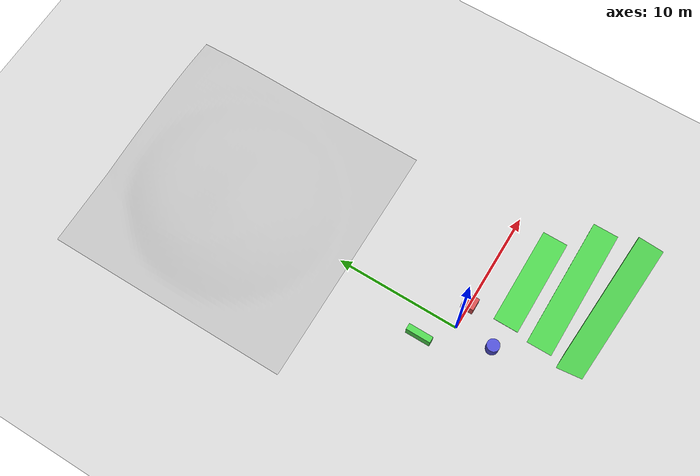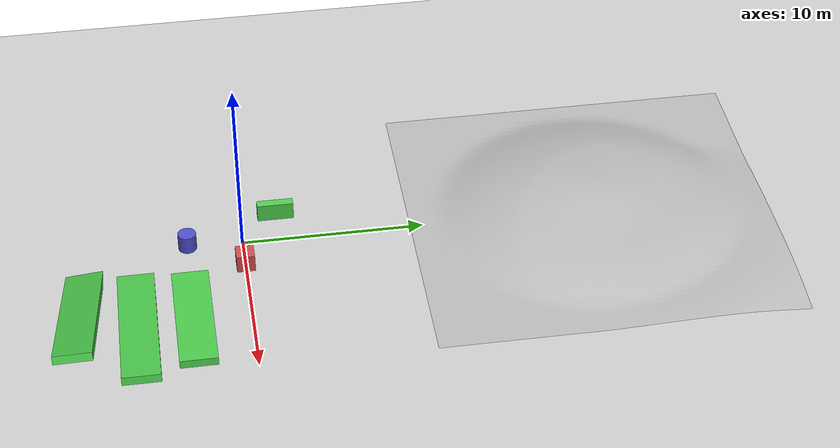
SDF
<sdf version="1.7">
 <world name="test_world">
  <physics type="ode">
   <max_step_size>0.001</max_step_size>
   <real_time_factor>1</real_time_factor>
   <real_time_update_rate>1000</real_time_update_rate>
  </physics>
  <light name="sun" type="directional">
   <pose>0 0 10 0 -0 0</pose>
   <diffuse>0.8 0.8 0.8 1</diffuse>
   <specular>0.2 0.2 0.2 1</specular>
   <attenuation>
    <range>1000</range>
    <constant>0.9</constant>
    <linear>0.01</linear>
    <quadratic>0.001</quadratic>
   </attenuation>
   <direction>-0.5 0.1 -0.9</direction>
   <spot><inner_angle>0</inner_angle><outer_angle>0</outer_angle><falloff>0</falloff></spot>
  </light>
  <model name="ground_plane">
   <static>1</static>
   <link name="link">
    <collision name="collision">
     <geometry><plane><normal>0 0 1</normal><size>100 100</size></plane></geometry>
     <surface><friction><ode><mu>100</mu><mu2>50</mu2></ode></friction></surface>
    </collision>
    <visual name="visual">
     <cast_shadows>0</cast_shadows>
     <geometry><plane><normal>0 0 1</normal><size>100 100</size></plane></geometry>
     <material>
      <script><uri>file://media/materials/scripts/gazebo.material</uri><name>Gazebo/Grey</name></script>
     </material>
    </visual>
   </link>
  </model>
  <model name="box1">
   <pose>2 0 0.5 0 -0 0</pose>
   <static>1</static>
   <link name="link">
    <collision name="collision"><geometry><box><size>1 1 1</size></box></geometry></collision>
    <visual name="visual">
     <geometry><box><size>1 1 1</size></box></geometry>
     <material><ambient>0.8 0.3 0.3 1</ambient><diffuse>0.8 0.3 0.3 1</diffuse></material>
    </visual>
   </link>
  </model>
  <model name="box2">
   <pose>-2 2 0.5 0 -0 0</pose>
   <static>1</static>
   <link name="link">
    <collision name="collision"><geometry><box><size>0.5 2 1</size></box></geometry></collision>
    <visual name="visual">
     <geometry><box><size>0.5 2 1</size></box></geometry>
     <material><ambient>0.3 0.8 0.3 1</ambient><diffuse>0.3 0.8 0.3 1</diffuse></material>
    </visual>
   </link>
  </model>
  <model name="cylinder1">
   <pose>0 -3 0.5 0 -0 0</pose>
   <static>1</static>
   <link name="link">
    <collision name="collision">
     <geometry><cylinder><radius>0.5</radius><length>1</length></cylinder></geometry>
    </collision>
    <visual name="visual">
     <geometry><cylinder><radius>0.5</radius><length>1</length></cylinder></geometry>
     <material><ambient>0.3 0.3 0.8 1</ambient><diffuse>0.3 0.3 0.8 1</diffuse></material>
    </visual>
   </link>
  </model>
  <model name="ramp1">
   <pose>5.94548 -3.04297 0.071873 0.002354 -0.074159 -0.000175</pose>
   <static>1</static>
   <link name="link">
    <collision name="collision"><geometry><box><size>7.76439 2.00382 0.439108</size></box></geometry></collision>
    <visual name="visual">
     <geometry><box><size>7.76439 2.00382 0.439108</size></box></geometry>
     <material><ambient>0.3 0.8 0.3 1</ambient><diffuse>0.3 0.8 0.3 1</diffuse></material>
    </visual>
   </link>
  </model>
  <model name="ramp2">
   <pose>6.30451 -5.96575 0.530079 0.001361 -0.175217 -0.002422</pose>
   <static>1</static>
   <link name="link">
    <collision name="collision"><geometry><box><size>11.3662 2 0.439</size></box></geometry></collision>
    <visual name="visual">
     <geometry><box><size>11.3662 2 0.439</size></box></geometry>
     <material><ambient>0.3 0.8 0.3 1</ambient><diffuse>0.3 0.8 0.3 1</diffuse></material>
    </visual>
   </link>
  </model>
  <model name="ramp3">
   <pose>6.48133 -8.92439 1.50083 0.055069 -0.331674 -0.05331</pose>
   <static>1</static>
   <link name="link">
    <collision name="collision"><geometry><box><size>11.3662 2 0.439</size></box></geometry></collision>
    <visual name="visual">
     <geometry><box><size>11.3662 2 0.439</size></box></geometry>
     <material><ambient>0.3 0.8 0.3 1</ambient><diffuse>0.3 0.8 0.3 1</diffuse></material>
    </visual>
   </link>
  </model>
  <model name="my_hill">
   <static>1</static>
   <link name="link">
    <collision name="collision">
     <geometry><mesh><uri>model://my_hill/meshes/Untitled.stl</uri></mesh></geometry>
    </collision>
    <visual name="visual">
     <geometry><mesh><uri>model://my_hill/meshes/Untitled.stl</uri></mesh></geometry>
    </visual>
   </link>
   <pose>0.191513 19.2842 0 0 -0 0</pose>
  </model>
  <gravity>0 0 -9.8</gravity>
  <magnetic_field>6e-06 2.3e-05 -4.2e-05</magnetic_field>
  <atmosphere type="adiabatic"/>
  <scene><ambient>0.4 0.4 0.4 1</ambient><background>0.7 0.7 0.7 1</background><shadows>1</shadows></scene>
  <audio><device>default</device></audio>
  <spherical_coordinates>
   <surface_model>EARTH_WGS84</surface_model>
   <latitude_deg>0</latitude_deg>
   <longitude_deg>0</longitude_deg>
   <elevation>0</elevation>
   <heading_deg>0</heading_deg>
  </spherical_coordinates>
 </world>
</sdf>
